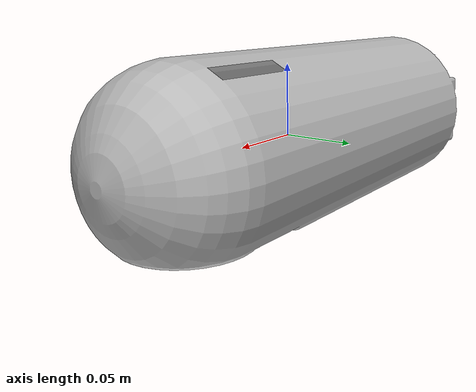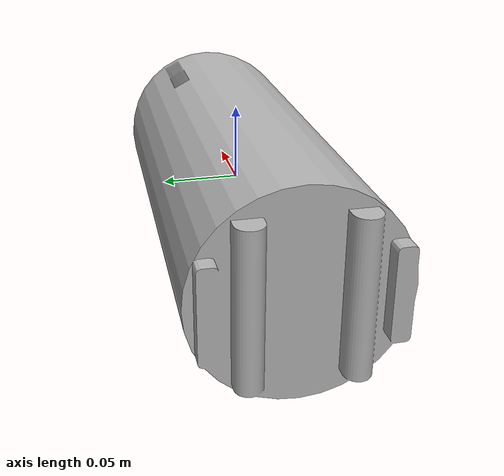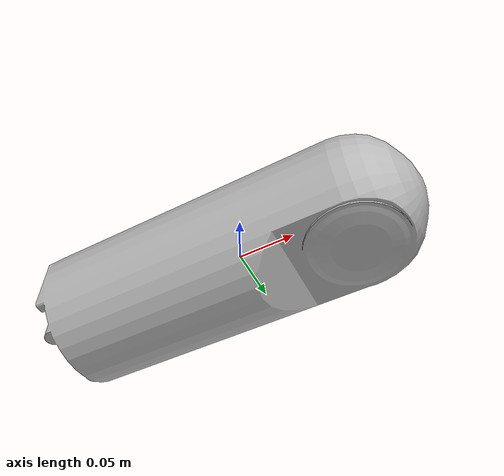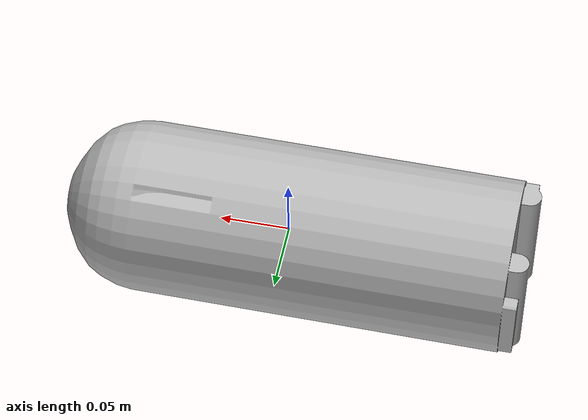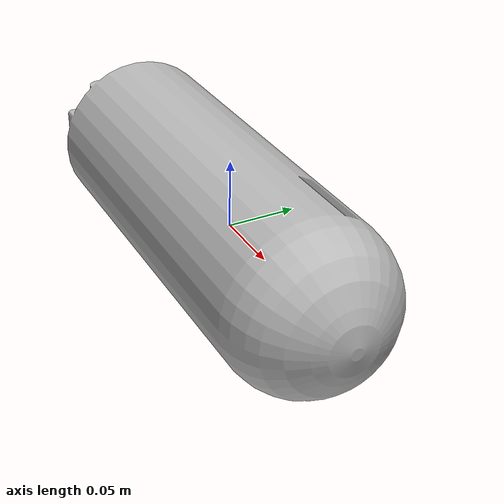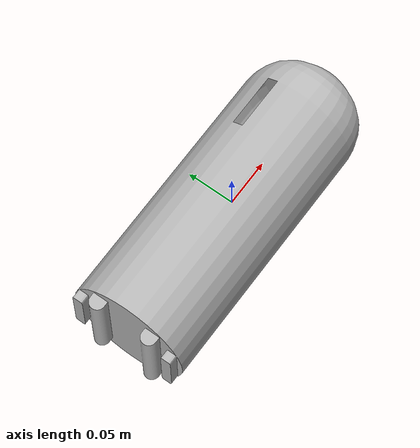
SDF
<?xml version="1.0"?>
<sdf version="1.6">
  <model name="teledyne_explorer4000">
    <link name="explorer4000_base_link">
      <pose>0 0 0 0 0 0</pose>
      <inertial>
        <pose>0 0 0 0 0 0</pose>
        <mass>8.6</mass>
        <inertia>
          <ixx>0.0219827</ixx>
          <ixy>0</ixy>
          <ixz>0</ixz>
          <iyy>0.0957988</iyy>
          <iyz>0</iyz>
          <izz>0.0957988</izz>
        </inertia>
      </inertial>
      <velocity_decay/>
      <gravity>1</gravity>
      <velocity_decay/>

      <sensor
        name="teledyne_explorer4000" type="custom"
        gz:type="dvl">
        <pose>0 0 0 0 0 0</pose>
        <always_on>1</always_on>
        <update_rate>12</update_rate>
        <topic>/dvl/velocity</topic>
        <gz:dvl>
          <type>phased_array</type>
          <arrangement degrees="true">
            <beam id="1">
              <aperture>3.8</aperture>
              <rotation>-135</rotation>
              <tilt>30</tilt>
            </beam>
            <beam>
              <aperture>3.8</aperture>
              <rotation>135</rotation>
              <tilt>30</tilt>
            </beam>
            <beam>
              <aperture>3.8</aperture>
              <rotation>45</rotation>
              <tilt>30</tilt>
            </beam>
            <beam>
              <aperture>3.8</aperture>
              <rotation>-45</rotation>
              <tilt>30</tilt>
            </beam>
          </arrangement>
          <tracking>
            <water_mass_mode>
              <when>best</when>
              <water_velocity>
                <x>0.</x>
                <y>0.</y>
                <z>0.</z>
              </water_velocity>
              <boundaries>
                <near>10.</near>
                <far>100.</far>
              </boundaries>
              <bins>10</bins>
              <noise type="gaussian">
                <stddev>0.025</stddev>
              </noise>
              <visualize>true</visualize>
            </water_mass_mode>
            <bottom_mode>
              <when>best</when>
              <noise type="gaussian">
                <stddev>0.019</stddev>
              </noise>
              <visualize>true</visualize>
            </bottom_mode>
          </tracking>
          <maximum_range>66.</maximum_range>
          <minimum_range>0.5</minimum_range>
          <!-- ENU to FSD -->
          <reference_frame>0 0 0 3.14 0 -1.57</reference_frame>
        </gz:dvl>
      </sensor>

      <self_collide>0</self_collide>
      <enable_wind>0</enable_wind>
      <kinematic>0</kinematic>
      <visual name="explorer4000_base_link_visual">
        <pose>0 0 0 1.5708 0 1.5708</pose>
        <geometry>
          <mesh>
            <scale>1 1 1</scale>
            <!-- Mesh is actually for a Teledyne Explorer4000 for now -->
            <uri>model://meshes/teledyne_explorer4000/MarineExplorer.dae</uri>
          </mesh>
        </geometry>
        <transparency>0</transparency>
        <cast_shadows>1</cast_shadows>
      </visual>
      <collision name="explorer4000_base_link_collision">
        <laser_retro>0</laser_retro>
        <max_contacts>10</max_contacts>
        <pose>0 0 0 3.14159 -1.57079 0</pose>
        <geometry>
          <cylinder>
            <radius>0.0715</radius>
            <length>0.344</length>
          </cylinder>
        </geometry>
        <surface>
          <friction>
            <ode>
              <mu>1</mu>
              <mu2>1</mu2>
              <fdir1>0 0 0</fdir1>
              <slip1>0</slip1>
              <slip2>0</slip2>
            </ode>
            <torsional>
              <coefficient>1</coefficient>
              <patch_radius>0</patch_radius>
              <surface_radius>0</surface_radius>
              <use_patch_radius>1</use_patch_radius>
              <ode>
                <slip>0</slip>
              </ode>
            </torsional>
          </friction>
          <bounce>
            <restitution_coefficient>0</restitution_coefficient>
            <threshold>1e+06</threshold>
          </bounce>
          <contact>
            <collide_without_contact>0</collide_without_contact>
            <collide_without_contact_bitmask>1</collide_without_contact_bitmask>
            <collide_bitmask>1</collide_bitmask>
            <ode>
              <soft_cfm>0</soft_cfm>
              <soft_erp>0.2</soft_erp>
              <kp>1e+13</kp>
              <kd>1</kd>
              <max_vel>0.01</max_vel>
              <min_depth>0</min_depth>
            </ode>
            <bullet>
              <split_impulse>1</split_impulse>
              <split_impulse_penetration_threshold>-0.01</split_impulse_penetration_threshold>
              <soft_cfm>0</soft_cfm>
              <soft_erp>0.2</soft_erp>
              <kp>1e+13</kp>
              <kd>1</kd>
            </bullet>
          </contact>
        </surface>
      </collision>
    </link>
    <static>1</static>
    <allow_auto_disable>1</allow_auto_disable>

    <plugin
      filename="DVLBridge"
      name="dave_ros_gz_plugins::DVLBridge">
      <topic>/dvl/velocity</topic>
    </plugin>

  </model>
</sdf>
